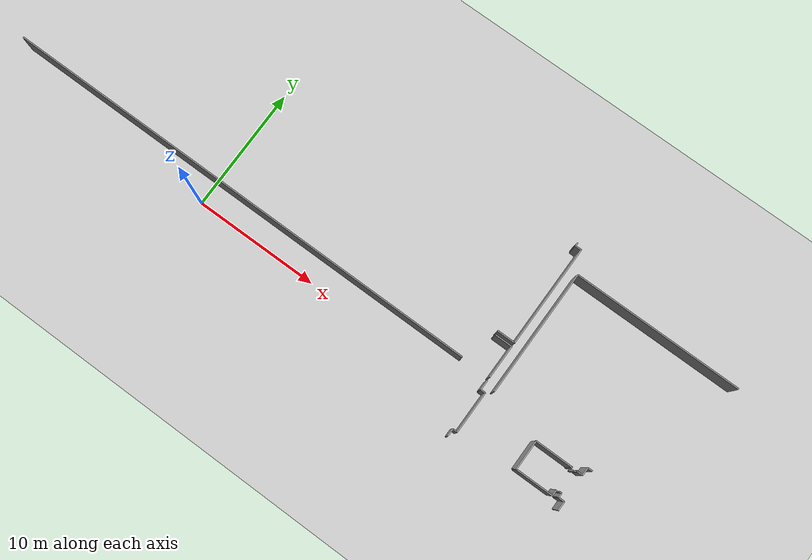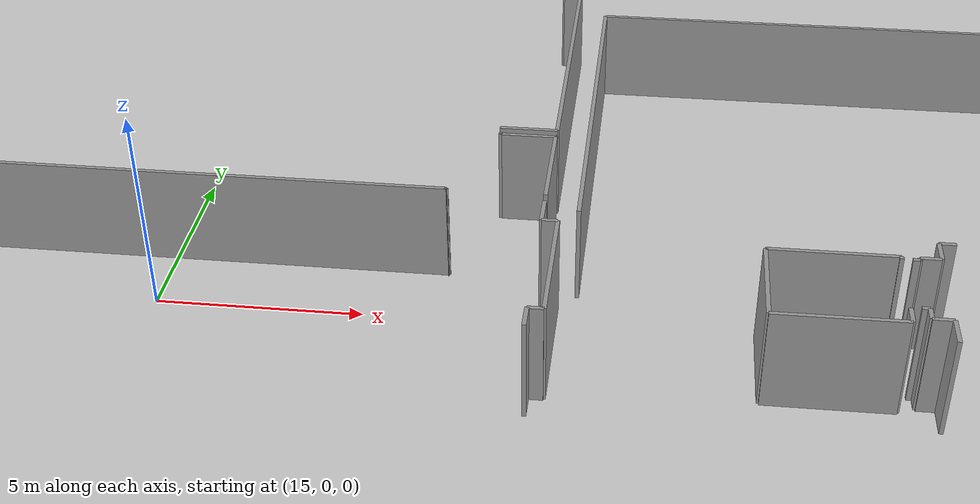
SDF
<sdf version="1.6">
 <world name="default">
  <model name="ground_plane">
   <static>1</static>
   <link name="link">
    <collision name="collision">
     <geometry><plane><normal>0 0 1</normal><size>100 100</size></plane></geometry>
     <surface><friction><ode><mu>100</mu><mu2>50</mu2></ode></friction></surface>
    </collision>
    <visual name="visual">
     <cast_shadows>0</cast_shadows>
     <geometry><plane><normal>0 0 1</normal><size>100 100</size></plane></geometry>
     <material>
      <script><uri>file://media/materials/scripts/gazebo.material</uri><name>Gazebo/Grey</name></script>
     </material>
    </visual>
   </link>
  </model>
  <model name="0510032258_A_40_1_105">
   <static>1</static>
   <link name="Wall_172">
    <collision name="Wall_172_Collision">
     <geometry><box><size>0.780440085375 0.1 2.5</size></box></geometry>
     <pose>0.390220042687 0 1.25 0 0 0</pose>
    </collision>
    <visual name="Wall_172_Visual">
     <pose>0.390220042687 0 1.25 0 0 0</pose>
     <geometry><box><size>0.780440085375 0.1 2.5</size></box></geometry>
     <material>
      <script><uri>file://media/materials/scripts/gazebo.material</uri><name>Gazebo/Grey</name></script>
      <ambient>1 1 1 1</ambient>
     </material>
    </visual>
    <pose>72.0287884948 -11.6115712979 0 0 0 -1.57079632679</pose>
   </link>
   <link name="Wall_173">
    <collision name="Wall_173_Collision">
     <geometry><box><size>0.374148795609 0.1 2.5</size></box></geometry>
     <pose>0.187074397805 0 1.25 0 0 0</pose>
    </collision>
    <visual name="Wall_173_Visual">
     <pose>0.187074397805 0 1.25 0 0 0</pose>
     <geometry><box><size>0.374148795609 0.1 2.5</size></box></geometry>
     <material>
      <script><uri>file://media/materials/scripts/gazebo.material</uri><name>Gazebo/Grey</name></script>
      <ambient>1 1 1 1</ambient>
     </material>
    </visual>
    <pose>72.0287884948 -12.3920113833 0 0 0 0.0</pose>
   </link>
   <link name="Wall_174">
    <collision name="Wall_174_Collision">
     <geometry><box><size>3.30508689908 0.1 2.5</size></box></geometry>
     <pose>1.65254344954 0 1.25 0 0 0</pose>
    </collision>
    <visual name="Wall_174_Visual">
     <pose>1.65254344954 0 1.25 0 0 0</pose>
     <geometry><box><size>3.30508689908 0.1 2.5</size></box></geometry>
     <material>
      <script><uri>file://media/materials/scripts/gazebo.material</uri><name>Gazebo/Grey</name></script>
      <ambient>1 1 1 1</ambient>
     </material>
    </visual>
    <pose>72.4029372904 -12.3920113833 0 0 0 -1.57079632679</pose>
   </link>
   <link name="Wall_175">
    <collision name="Wall_175_Collision">
     <geometry><box><size>0.363349933936 0.1 2.5</size></box></geometry>
     <pose>0.181674966968 0 1.25 0 0 0</pose>
    </collision>
    <visual name="Wall_175_Visual">
     <pose>0.181674966968 0 1.25 0 0 0</pose>
     <geometry><box><size>0.363349933936 0.1 2.5</size></box></geometry>
     <material>
      <script><uri>file://media/materials/scripts/gazebo.material</uri><name>Gazebo/Grey</name></script>
      <ambient>1 1 1 1</ambient>
     </material>
    </visual>
    <pose>72.4029372904 -15.6970982823 0 0 0 3.14159265359</pose>
   </link>
   <link name="Wall_176">
    <collision name="Wall_176_Collision">
     <geometry><box><size>0.606768980587 0.1 2.5</size></box></geometry>
     <pose>0.303384490294 0 1.25 0 0 0</pose>
    </collision>
    <visual name="Wall_176_Visual">
     <pose>0.303384490294 0 1.25 0 0 0</pose>
     <geometry><box><size>0.606768980587 0.1 2.5</size></box></geometry>
     <material>
      <script><uri>file://media/materials/scripts/gazebo.material</uri><name>Gazebo/Grey</name></script>
      <ambient>1 1 1 1</ambient>
     </material>
    </visual>
    <pose>72.0395873564 -15.6970982823 0 0 0 -1.57079632679</pose>
   </link>
   <link name="Wall_189">
    <collision name="Wall_189_Collision">
     <geometry><box><size>0.735084866348 0.1 2.5</size></box></geometry>
     <pose>0.367542433174 0 1.25 0 0 0</pose>
    </collision>
    <visual name="Wall_189_Visual">
     <pose>0.367542433174 0 1.25 0 0 0</pose>
     <geometry><box><size>0.735084866348 0.1 2.5</size></box></geometry>
     <material>
      <script><uri>file://media/materials/scripts/gazebo.material</uri><name>Gazebo/Grey</name></script>
      <ambient>1 1 1 1</ambient>
     </material>
    </visual>
    <pose>80.9251448318 -15.9231121049 0 0 0 1.57079632679</pose>
   </link>
   <link name="Wall_190">
    <collision name="Wall_190_Collision">
     <geometry><box><size>0.469305823763 0.1 2.5</size></box></geometry>
     <pose>0.234652911881 0 1.25 0 0 0</pose>
    </collision>
    <visual name="Wall_190_Visual">
     <pose>0.234652911881 0 1.25 0 0 0</pose>
     <geometry><box><size>0.469305823763 0.1 2.5</size></box></geometry>
     <material>
      <script><uri>file://media/materials/scripts/gazebo.material</uri><name>Gazebo/Grey</name></script>
      <ambient>1 1 1 1</ambient>
     </material>
    </visual>
    <pose>80.9251448318 -15.1880272385 0 0 0 3.14159265359</pose>
   </link>
   <link name="Wall_191">
    <collision name="Wall_191_Collision">
     <geometry><box><size>0.352551072263 0.1 2.5</size></box></geometry>
     <pose>0.176275536132 0 1.25 0 0 0</pose>
    </collision>
    <visual name="Wall_191_Visual">
     <pose>0.176275536132 0 1.25 0 0 0</pose>
     <geometry><box><size>0.352551072263 0.1 2.5</size></box></geometry>
     <material>
      <script><uri>file://media/materials/scripts/gazebo.material</uri><name>Gazebo/Grey</name></script>
      <ambient>1 1 1 1</ambient>
     </material>
    </visual>
    <pose>80.455839008 -15.1880272385 0 0 0 1.57079632679</pose>
   </link>
   <link name="Wall_192">
    <collision name="Wall_192_Collision">
     <geometry><box><size>0.16693769692 0.1 2.5</size></box></geometry>
     <pose>0.0834688484602 0 1.25 0 0 0</pose>
    </collision>
    <visual name="Wall_192_Visual">
     <pose>0.0834688484602 0 1.25 0 0 0</pose>
     <geometry><box><size>0.16693769692 0.1 2.5</size></box></geometry>
     <material>
      <script><uri>file://media/materials/scripts/gazebo.material</uri><name>Gazebo/Grey</name></script>
      <ambient>1 1 1 1</ambient>
     </material>
    </visual>
    <pose>80.455839008 -14.8354761663 0 0 0 3.14159265359</pose>
   </link>
   <link name="Wall_193">
    <collision name="Wall_193_Collision">
     <geometry><box><size>0.158171562151 0.1 2.5</size></box></geometry>
     <pose>0.0790857810753 0 1.25 0 0 0</pose>
    </collision>
    <visual name="Wall_193_Visual">
     <pose>0.0790857810753 0 1.25 0 0 0</pose>
     <geometry><box><size>0.158171562151 0.1 2.5</size></box></geometry>
     <material>
      <script><uri>file://media/materials/scripts/gazebo.material</uri><name>Gazebo/Grey</name></script>
      <ambient>1 1 1 1</ambient>
     </material>
    </visual>
    <pose>80.2889013111 -13.0860605753 0 0 0 0.0</pose>
   </link>
   <link name="Wall_194">
    <collision name="Wall_194_Collision">
     <geometry><box><size>0.0795304400854 0.1 2.5</size></box></geometry>
     <pose>0.0397652200427 0 1.25 0 0 0</pose>
    </collision>
    <visual name="Wall_194_Visual">
     <pose>0.0397652200427 0 1.25 0 0 0</pose>
     <geometry><box><size>0.0795304400854 0.1 2.5</size></box></geometry>
     <material>
      <script><uri>file://media/materials/scripts/gazebo.material</uri><name>Gazebo/Grey</name></script>
      <ambient>1 1 1 1</ambient>
     </material>
    </visual>
    <pose>80.4470728733 -13.0860605753 0 0 0 1.57079632679</pose>
   </link>
   <link name="Wall_195">
    <collision name="Wall_195_Collision">
     <geometry><box><size>0.480231730867 0.1 2.5</size></box></geometry>
     <pose>0.240115865433 0 1.25 0 0 0</pose>
    </collision>
    <visual name="Wall_195_Visual">
     <pose>0.240115865433 0 1.25 0 0 0</pose>
     <geometry><box><size>0.480231730867 0.1 2.5</size></box></geometry>
     <material>
      <script><uri>file://media/materials/scripts/gazebo.material</uri><name>Gazebo/Grey</name></script>
      <ambient>1 1 1 1</ambient>
     </material>
    </visual>
    <pose>80.4470728733 -13.0065301352 0 0 0 0.0</pose>
   </link>
   <link name="Wall_196">
    <collision name="Wall_196_Collision">
     <geometry><box><size>0.610326252668 0.1 2.5</size></box></geometry>
     <pose>0.305163126334 0 1.25 0 0 0</pose>
    </collision>
    <visual name="Wall_196_Visual">
     <pose>0.305163126334 0 1.25 0 0 0</pose>
     <geometry><box><size>0.610326252668 0.1 2.5</size></box></geometry>
     <material>
      <script><uri>file://media/materials/scripts/gazebo.material</uri><name>Gazebo/Grey</name></script>
      <ambient>1 1 1 1</ambient>
     </material>
    </visual>
    <pose>80.9273046041 -13.0065301352 0 0 0 1.57079632679</pose>
   </link>
   <link name="Wall_197">
    <collision name="Wall_197_Collision">
     <geometry><box><size>0.39002947454 0.1 2.5</size></box></geometry>
     <pose>0.19501473727 0 1.25 0 0 0</pose>
    </collision>
    <visual name="Wall_197_Visual">
     <pose>0.19501473727 0 1.25 0 0 0</pose>
     <geometry><box><size>0.39002947454 0.1 2.5</size></box></geometry>
     <material>
      <script><uri>file://media/materials/scripts/gazebo.material</uri><name>Gazebo/Grey</name></script>
      <ambient>1 1 1 1</ambient>
     </material>
    </visual>
    <pose>80.9273046041 -12.3962038825 0 0 0 0.0</pose>
   </link>
   <link name="Wall_231">
    <collision name="Wall_231_Collision">
     <geometry><box><size>0.00317613578615 0.1 2.5</size></box></geometry>
     <pose>0.00158806789307 0 1.25 0 0 0</pose>
    </collision>
    <visual name="Wall_231_Visual">
     <pose>0.00158806789307 0 1.25 0 0 0</pose>
     <geometry><box><size>0.00317613578615 0.1 2.5</size></box></geometry>
     <material>
      <script><uri>file://media/materials/scripts/gazebo.material</uri><name>Gazebo/Grey</name></script>
      <ambient>1 1 1 1</ambient>
     </material>
    </visual>
    <pose>77.0789714402 -15.3439119829 0 0 0 0.0</pose>
   </link>
   <link name="Wall_232">
    <collision name="Wall_232_Collision">
     <geometry><box><size>2.34818070942 0.1 2.5</size></box></geometry>
     <pose>1.17409035471 0 1.25 0 0 0</pose>
    </collision>
    <visual name="Wall_232_Visual">
     <pose>1.17409035471 0 1.25 0 0 0</pose>
     <geometry><box><size>2.34818070942 0.1 2.5</size></box></geometry>
     <material>
      <script><uri>file://media/materials/scripts/gazebo.material</uri><name>Gazebo/Grey</name></script>
      <ambient>1 1 1 1</ambient>
     </material>
    </visual>
    <pose>77.082147576 -15.3439119829 0 0 0 1.57079632679</pose>
   </link>
   <link name="Wall_233">
    <collision name="Wall_233_Collision">
     <geometry><box><size>2.97121150523 0.1 2.5</size></box></geometry>
     <pose>1.48560575262 0 1.25 0 0 0</pose>
    </collision>
    <visual name="Wall_233_Visual">
     <pose>1.48560575262 0 1.25 0 0 0</pose>
     <geometry><box><size>2.97121150523 0.1 2.5</size></box></geometry>
     <material>
      <script><uri>file://media/materials/scripts/gazebo.material</uri><name>Gazebo/Grey</name></script>
      <ambient>1 1 1 1</ambient>
     </material>
    </visual>
    <pose>77.082147576 -12.9957312735 0 0 0 0.0</pose>
   </link>
   <link name="Wall_234">
    <collision name="Wall_234_Collision">
     <geometry><box><size>0.0903293017583 0.1 2.5</size></box></geometry>
     <pose>0.0451646508792 0 1.25 0 0 0</pose>
    </collision>
    <visual name="Wall_234_Visual">
     <pose>0.0451646508792 0 1.25 0 0 0</pose>
     <geometry><box><size>0.0903293017583 0.1 2.5</size></box></geometry>
     <material>
      <script><uri>file://media/materials/scripts/gazebo.material</uri><name>Gazebo/Grey</name></script>
      <ambient>1 1 1 1</ambient>
     </material>
    </visual>
    <pose>80.0533590812 -12.9957312735 0 0 0 -1.57079632679</pose>
   </link>
   <link name="Wall_235">
    <collision name="Wall_235_Collision">
     <geometry><box><size>0.473117186706 0.1 2.5</size></box></geometry>
     <pose>0.236558593353 0 1.25 0 0 0</pose>
    </collision>
    <visual name="Wall_235_Visual">
     <pose>0.236558593353 0 1.25 0 0 0</pose>
     <geometry><box><size>0.473117186706 0.1 2.5</size></box></geometry>
     <material>
      <script><uri>file://media/materials/scripts/gazebo.material</uri><name>Gazebo/Grey</name></script>
      <ambient>1 1 1 1</ambient>
     </material>
    </visual>
    <pose>80.0533590812 -14.862790934 0 0 0 -1.57079632679</pose>
   </link>
   <link name="Wall_236">
    <collision name="Wall_236_Collision">
     <geometry><box><size>2.97439840991 0.1 2.5</size></box></geometry>
     <pose>1.48719920495 0 1.25 0 0 0</pose>
    </collision>
    <visual name="Wall_236_Visual">
     <pose>1.48719920495 0 1.25 0 0 0</pose>
     <geometry><box><size>2.97439840991 0.1 2.5</size></box></geometry>
     <material>
      <script><uri>file://media/materials/scripts/gazebo.material</uri><name>Gazebo/Grey</name></script>
      <ambient>1 1 1 1</ambient>
     </material>
    </visual>
    <pose>80.0533590812 -15.3359081207 0 0 0 -3.13890173236</pose>
   </link>
   <link name="Wall_237">
    <collision name="Wall_237_Collision">
     <geometry><box><size>10.0895670292 0.1 2.5</size></box></geometry>
     <pose>5.04478351458 0 1.25 0 0 0</pose>
    </collision>
    <visual name="Wall_237_Visual">
     <pose>5.04478351458 0 1.25 0 0 0</pose>
     <geometry><box><size>10.0895670292 0.1 2.5</size></box></geometry>
     <material>
      <script><uri>file://media/materials/scripts/gazebo.material</uri><name>Gazebo/Grey</name></script>
      <ambient>1 1 1 1</ambient>
     </material>
    </visual>
    <pose>72.8526781177 -11.9535775993 0 0 0 1.57079632679</pose>
   </link>
   <link name="Wall_238">
    <collision name="Wall_238_Collision">
     <geometry><box><size>13.4044364265 0.1 2.5</size></box></geometry>
     <pose>6.70221821323 0 1.25 0 0 0</pose>
    </collision>
    <visual name="Wall_238_Visual">
     <pose>6.70221821323 0 1.25 0 0 0</pose>
     <geometry><box><size>13.4044364265 0.1 2.5</size></box></geometry>
     <material>
      <script><uri>file://media/materials/scripts/gazebo.material</uri><name>Gazebo/Grey</name></script>
      <ambient>1 1 1 1</ambient>
     </material>
    </visual>
    <pose>72.8526781177 -1.86401057018 0 0 0 0.0</pose>
   </link>
   <link name="Wall_347">
    <collision name="Wall_347_Collision">
     <geometry><box><size>0.267430633194 0.1 2.5</size></box></geometry>
     <pose>0.133715316597 0 1.25 0 0 0</pose>
    </collision>
    <visual name="Wall_347_Visual">
     <pose>0.133715316597 0 1.25 0 0 0</pose>
     <geometry><box><size>0.267430633194 0.1 2.5</size></box></geometry>
     <material>
      <script><uri>file://media/materials/scripts/gazebo.material</uri><name>Gazebo/Grey</name></script>
      <ambient>1 1 1 1</ambient>
     </material>
    </visual>
    <pose>71.5546549446 -0.000127045431448 0 0 0 -1.57079632679</pose>
   </link>
   <link name="Wall_348">
    <collision name="Wall_348_Collision">
     <geometry><box><size>0.483407866653 0.1 2.5</size></box></geometry>
     <pose>0.241703933327 0 1.25 0 0 0</pose>
    </collision>
    <visual name="Wall_348_Visual">
     <pose>0.241703933327 0 1.25 0 0 0</pose>
     <geometry><box><size>0.483407866653 0.1 2.5</size></box></geometry>
     <material>
      <script><uri>file://media/materials/scripts/gazebo.material</uri><name>Gazebo/Grey</name></script>
      <ambient>1 1 1 1</ambient>
     </material>
    </visual>
    <pose>71.5546549446 -0.267557678626 0 0 0 0.0</pose>
   </link>
   <link name="Wall_349">
    <collision name="Wall_349_Collision">
     <geometry><box><size>8.11540806993 0.1 2.5</size></box></geometry>
     <pose>4.05770403496 0 1.25 0 0 0</pose>
    </collision>
    <visual name="Wall_349_Visual">
     <pose>4.05770403496 0 1.25 0 0 0</pose>
     <geometry><box><size>8.11540806993 0.1 2.5</size></box></geometry>
     <material>
      <script><uri>file://media/materials/scripts/gazebo.material</uri><name>Gazebo/Grey</name></script>
      <ambient>1 1 1 1</ambient>
     </material>
    </visual>
    <pose>72.0380628113 -0.267557678626 0 0 0 -1.57079632679</pose>
   </link>
   <link name="Wall_350">
    <collision name="Wall_350_Collision">
     <geometry><box><size>1.43980587458 0.1 2.5</size></box></geometry>
     <pose>0.71990293729 0 1.25 0 0 0</pose>
    </collision>
    <visual name="Wall_350_Visual">
     <pose>0.71990293729 0 1.25 0 0 0</pose>
     <geometry><box><size>1.43980587458 0.1 2.5</size></box></geometry>
     <material>
      <script><uri>file://media/materials/scripts/gazebo.material</uri><name>Gazebo/Grey</name></script>
      <ambient>1 1 1 1</ambient>
     </material>
    </visual>
    <pose>72.0380628113 -8.38296574855 0 0 0 3.14159265359</pose>
   </link>
   <link name="Wall_386">
    <collision name="Wall_386_Collision">
     <geometry><box><size>0.0785140766338 0.1 2.5</size></box></geometry>
     <pose>0.0392570383169 0 1.25 0 0 0</pose>
    </collision>
    <visual name="Wall_386_Visual">
     <pose>0.0392570383169 0 1.25 0 0 0</pose>
     <geometry><box><size>0.0785140766338 0.1 2.5</size></box></geometry>
     <material>
      <script><uri>file://media/materials/scripts/gazebo.material</uri><name>Gazebo/Grey</name></script>
      <ambient>1 1 1 1</ambient>
     </material>
    </visual>
    <pose>70.6032117085 -8.6716129688 0 0 0 0.0</pose>
   </link>
   <link name="Wall_387">
    <collision name="Wall_387_Collision">
     <geometry><box><size>0.0287122675069 0.1 2.5</size></box></geometry>
     <pose>0.0143561337534 0 1.25 0 0 0</pose>
    </collision>
    <visual name="Wall_387_Visual">
     <pose>0.0143561337534 0 1.25 0 0 0</pose>
     <geometry><box><size>0.0287122675069 0.1 2.5</size></box></geometry>
     <material>
      <script><uri>file://media/materials/scripts/gazebo.material</uri><name>Gazebo/Grey</name></script>
      <ambient>1 1 1 1</ambient>
     </material>
    </visual>
    <pose>70.6817257851 -8.6716129688 0 0 0 -1.57079632679</pose>
   </link>
   <link name="Wall_388">
    <collision name="Wall_388_Collision">
     <geometry><box><size>1.34401361927 0.1 2.5</size></box></geometry>
     <pose>0.672006809635 0 1.25 0 0 0</pose>
    </collision>
    <visual name="Wall_388_Visual">
     <pose>0.672006809635 0 1.25 0 0 0</pose>
     <geometry><box><size>1.34401361927 0.1 2.5</size></box></geometry>
     <material>
      <script><uri>file://media/materials/scripts/gazebo.material</uri><name>Gazebo/Grey</name></script>
      <ambient>1 1 1 1</ambient>
     </material>
    </visual>
    <pose>70.6817257851 -8.7003252363 0 0 0 0.0</pose>
   </link>
   <link name="Wall_389">
    <collision name="Wall_389_Collision">
     <geometry><box><size>2.6547413355 0.1 2.5</size></box></geometry>
     <pose>1.32737066775 0 1.25 0 0 0</pose>
    </collision>
    <visual name="Wall_389_Visual">
     <pose>1.32737066775 0 1.25 0 0 0</pose>
     <geometry><box><size>2.6547413355 0.1 2.5</size></box></geometry>
     <material>
      <script><uri>file://media/materials/scripts/gazebo.material</uri><name>Gazebo/Grey</name></script>
      <ambient>1 1 1 1</ambient>
     </material>
    </visual>
    <pose>72.0257394044 -8.7003252363 0 0 0 -1.57079632679</pose>
   </link>
   <link name="Wall_390">
    <collision name="Wall_390_Collision">
     <geometry><box><size>0.0166429515195 0.1 2.5</size></box></geometry>
     <pose>0.00832147575973 0 1.25 0 0 0</pose>
    </collision>
    <visual name="Wall_390_Visual">
     <pose>0.00832147575973 0 1.25 0 0 0</pose>
     <geometry><box><size>0.0166429515195 0.1 2.5</size></box></geometry>
     <material>
      <script><uri>file://media/materials/scripts/gazebo.material</uri><name>Gazebo/Grey</name></script>
      <ambient>1 1 1 1</ambient>
     </material>
    </visual>
    <pose>69.6892468747 -11.3550665718 0 0 0 3.14159265359</pose>
   </link>
   <link name="Wall_391">
    <collision name="Wall_391_Collision">
     <geometry><box><size>0.0332859030389 0.1 2.5</size></box></geometry>
     <pose>0.0166429515195 0 1.25 0 0 0</pose>
    </collision>
    <visual name="Wall_391_Visual">
     <pose>0.0166429515195 0 1.25 0 0 0</pose>
     <geometry><box><size>0.0332859030389 0.1 2.5</size></box></geometry>
     <material>
      <script><uri>file://media/materials/scripts/gazebo.material</uri><name>Gazebo/Grey</name></script>
      <ambient>1 1 1 1</ambient>
     </material>
    </visual>
    <pose>69.6726039232 -11.3550665718 0 0 0 1.57079632679</pose>
   </link>
   <link name="Wall_392">
    <collision name="Wall_392_Collision">
     <geometry><box><size>39.1242765836 0.1 2.5</size></box></geometry>
     <pose>19.5621382918 0 1.25 0 0 0</pose>
    </collision>
    <visual name="Wall_392_Visual">
     <pose>19.5621382918 0 1.25 0 0 0</pose>
     <geometry><box><size>39.1242765836 0.1 2.5</size></box></geometry>
     <material>
      <script><uri>file://media/materials/scripts/gazebo.material</uri><name>Gazebo/Grey</name></script>
      <ambient>1 1 1 1</ambient>
     </material>
    </visual>
    <pose>69.6726039232 -11.3217806688 0 0 0 3.14139781993</pose>
   </link>
   <pose>-47.9 13.1512145543 0 0 0 0</pose>
  </model>
 </world>
</sdf>
